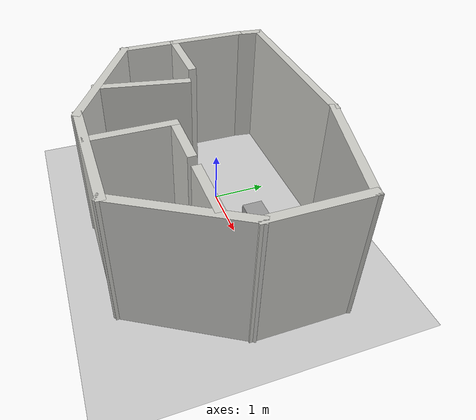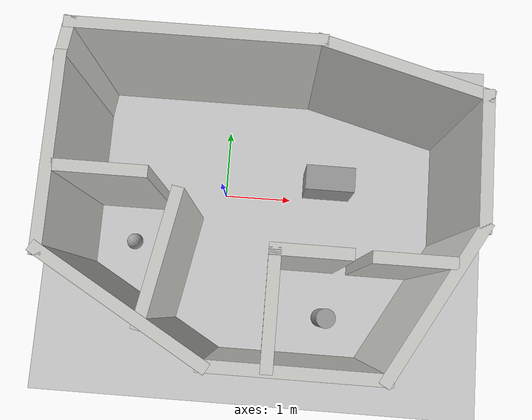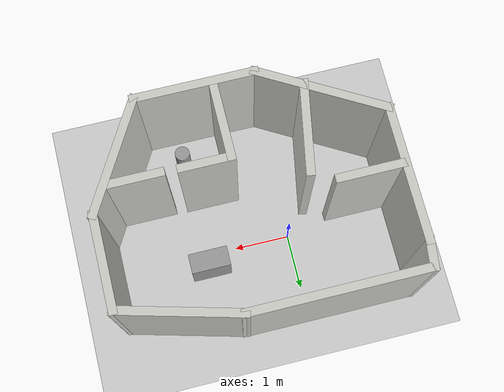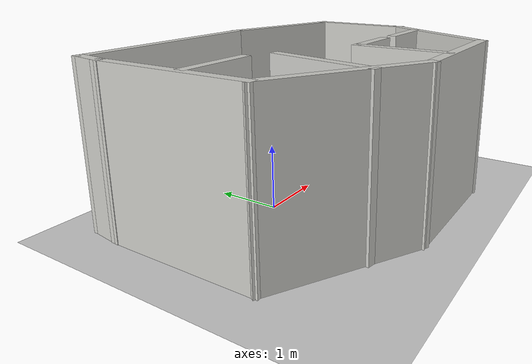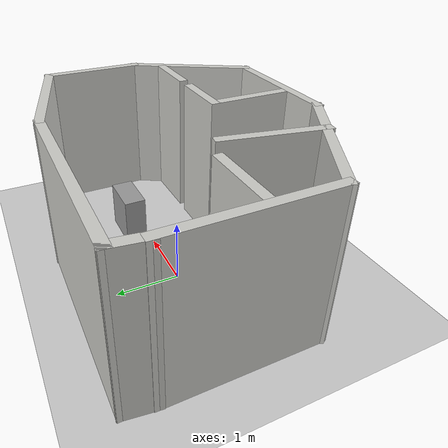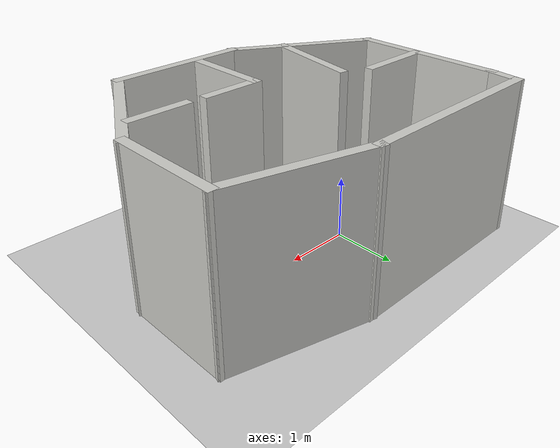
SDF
<sdf version="1.6">
 <world name="default">
  <light name="sun" type="directional">
   <pose>0 0 10 0 -0 0</pose>
   <diffuse>0.8 0.8 0.8 1</diffuse>
   <specular>0.2 0.2 0.2 1</specular>
   <attenuation>
    <range>1000</range>
    <constant>0.9</constant>
    <linear>0.01</linear>
    <quadratic>0.001</quadratic>
   </attenuation>
   <direction>-0.5 0.1 -0.9</direction>
  </light>
  <model name="ground_plane">
   <static>1</static>
   <link name="link">
    <collision name="collision">
     <geometry><plane><normal>0 0 1</normal><size>100 100</size></plane></geometry>
     <surface>
      <contact><collide_bitmask>65535</collide_bitmask></contact>
      <friction><ode><mu>100</mu><mu2>50</mu2></ode></friction>
     </surface>
    </collision>
    <visual name="visual">
     <cast_shadows>0</cast_shadows>
     <geometry><plane><normal>0 0 1</normal><size>100 100</size></plane></geometry>
     <material>
      <script><uri>file://media/materials/scripts/gazebo.material</uri><name>Gazebo/Grey</name></script>
     </material>
    </visual>
   </link>
  </model>
  <gravity>0 0 -9.8</gravity>
  <magnetic_field>6e-06 2.3e-05 -4.2e-05</magnetic_field>
  <atmosphere type="adiabatic"/>
  <physics name="default_physics" default="0" type="ode">
   <max_step_size>0.001</max_step_size>
   <real_time_factor>1</real_time_factor>
   <real_time_update_rate>1000</real_time_update_rate>
  </physics>
  <scene><ambient>0.4 0.4 0.4 1</ambient><background>0.7 0.7 0.7 1</background><shadows>1</shadows></scene>
  <audio><device>default</device></audio>
  <spherical_coordinates>
   <surface_model>EARTH_WGS84</surface_model>
   <latitude_deg>0</latitude_deg>
   <longitude_deg>0</longitude_deg>
   <elevation>0</elevation>
   <heading_deg>0</heading_deg>
  </spherical_coordinates>
  <model name="rig_wall">
   <pose>0.62258 -0.40921 0 0 -0 0</pose>
   <link name="Wall_0">
    <collision name="Wall_0_Collision">
     <geometry><box><size>2.5 0.15 2.5</size></box></geometry>
     <pose>0 0 1.25 0 -0 0</pose>
    </collision>
    <visual name="Wall_0_Visual">
     <pose>0 0 1.25 0 -0 0</pose>
     <geometry><box><size>2.5 0.15 2.5</size></box></geometry>
     <material>
      <script><uri>file://media/materials/scripts/gazebo.material</uri><name>Gazebo/CeilingTiled</name></script>
      <ambient>1 1 1 1</ambient>
     </material>
     <meta><layer>0</layer></meta>
    </visual>
    <pose>-2.59258 0.374211 0 0 -0 -1.5708</pose>
   </link>
   <link name="Wall_1">
    <collision name="Wall_1_Collision">
     <geometry><box><size>2.5 0.15 2.5</size></box></geometry>
     <pose>0 0 1.25 0 -0 0</pose>
    </collision>
    <visual name="Wall_1_Visual">
     <pose>0 0 1.25 0 -0 0</pose>
     <geometry><box><size>2.5 0.15 2.5</size></box></geometry>
     <material>
      <script><uri>file://media/materials/scripts/gazebo.material</uri><name>Gazebo/CeilingTiled</name></script>
      <ambient>1 1 1 1</ambient>
     </material>
     <meta><layer>0</layer></meta>
    </visual>
    <pose>-1.575 -1.38829 0 0 -0 -0.523599</pose>
   </link>
   <link name="Wall_10">
    <collision name="Wall_10_Collision">
     <geometry><box><size>1.71545 0.15 2.5</size></box></geometry>
     <pose>0 0 1.25 0 -0 0</pose>
    </collision>
    <visual name="Wall_10_Visual">
     <pose>0 0 1.25 0 -0 0</pose>
     <geometry><box><size>1.71545 0.15 2.5</size></box></geometry>
     <material>
      <script><uri>file://media/materials/scripts/gazebo.material</uri><name>Gazebo/CeilingTiled</name></script>
      <ambient>1 1 1 1</ambient>
     </material>
     <meta><layer>0</layer></meta>
    </visual>
    <pose>-1.17117 -0.794253 0 0 -0 -1.75591</pose>
   </link>
   <link name="Wall_12">
    <collision name="Wall_12_Collision">
     <geometry><box><size>1.25 0.15 2.5</size></box></geometry>
     <pose>0 0 1.25 0 -0 0</pose>
    </collision>
    <visual name="Wall_12_Visual">
     <pose>0 0 1.25 0 -0 0</pose>
     <geometry><box><size>1.25 0.15 2.5</size></box></geometry>
     <material>
      <script><uri>file://media/materials/scripts/gazebo.material</uri><name>Gazebo/CeilingTiled</name></script>
      <ambient>1 1 1 1</ambient>
     </material>
     <meta><layer>0</layer></meta>
    </visual>
    <pose>-2.01258 0.199211 0 0 -0 0</pose>
   </link>
   <link name="Wall_14">
    <collision name="Wall_14_Collision">
     <geometry><box><size>1.5 0.15 2.5</size></box></geometry>
     <pose>0 0 1.25 0 -0 0</pose>
    </collision>
    <visual name="Wall_14_Visual">
     <pose>0 0 1.25 0 -0 0</pose>
     <geometry><box><size>1.5 0.15 2.5</size></box></geometry>
     <material>
      <script><uri>file://media/materials/scripts/gazebo.material</uri><name>Gazebo/CeilingTiled</name></script>
      <ambient>1 1 1 1</ambient>
     </material>
     <meta><layer>0</layer></meta>
    </visual>
    <pose>0.17742 -1.26579 0 0 -0 1.5708</pose>
   </link>
   <link name="Wall_15">
    <collision name="Wall_15_Collision">
     <geometry><box><size>1 0.15 2.5</size></box></geometry>
     <pose>0 0 1.25 0 -0 0</pose>
    </collision>
    <visual name="Wall_15_Visual">
     <pose>0 0 1.25 0 -0 0</pose>
     <geometry><box><size>1 0.15 2.5</size></box></geometry>
     <material>
      <script><uri>file://media/materials/scripts/gazebo.material</uri><name>Gazebo/CeilingTiled</name></script>
      <ambient>1 1 1 1</ambient>
     </material>
     <meta><layer>0</layer></meta>
    </visual>
    <pose>0.60242 -0.590789 0 0 -0 0</pose>
   </link>
   <link name="Wall_17">
    <collision name="Wall_17_Collision">
     <geometry><box><size>1 0.15 2.5</size></box></geometry>
     <pose>0 0 1.25 0 -0 0</pose>
    </collision>
    <visual name="Wall_17_Visual">
     <pose>0 0 1.25 0 -0 0</pose>
     <geometry><box><size>1 0.15 2.5</size></box></geometry>
     <material>
      <script><uri>file://media/materials/scripts/gazebo.material</uri><name>Gazebo/CeilingTiled</name></script>
      <ambient>1 1 1 1</ambient>
     </material>
     <meta><layer>0</layer></meta>
    </visual>
    <pose>1.80242 -0.600789 0 0 -0 0</pose>
   </link>
   <link name="Wall_2">
    <collision name="Wall_2_Collision">
     <geometry><box><size>2.25 0.15 2.5</size></box></geometry>
     <pose>0 0 1.25 0 -0 0</pose>
    </collision>
    <visual name="Wall_2_Visual">
     <pose>0 0 1.25 0 -0 0</pose>
     <geometry><box><size>2.25 0.15 2.5</size></box></geometry>
     <material>
      <script><uri>file://media/materials/scripts/gazebo.material</uri><name>Gazebo/CeilingTiled</name></script>
      <ambient>1 1 1 1</ambient>
     </material>
     <meta><layer>0</layer></meta>
    </visual>
    <pose>0.49258 -1.97579 0 0 -0 0</pose>
   </link>
   <link name="Wall_3">
    <collision name="Wall_3_Collision">
     <geometry><box><size>2.25 0.15 2.5</size></box></geometry>
     <pose>0 0 1.25 0 -0 0</pose>
    </collision>
    <visual name="Wall_3_Visual">
     <pose>0 0 1.25 0 -0 0</pose>
     <geometry><box><size>2.25 0.15 2.5</size></box></geometry>
     <material>
      <script><uri>file://media/materials/scripts/gazebo.material</uri><name>Gazebo/CeilingTiled</name></script>
      <ambient>1 1 1 1</ambient>
     </material>
     <meta><layer>0</layer></meta>
    </visual>
    <pose>2.06758 -1.06646 0 0 -0 1.0472</pose>
   </link>
   <link name="Wall_4">
    <collision name="Wall_4_Collision">
     <geometry><box><size>1.75 0.15 2.5</size></box></geometry>
     <pose>0 0 1.25 0 -0 0</pose>
    </collision>
    <visual name="Wall_4_Visual">
     <pose>0 0 1.25 0 -0 0</pose>
     <geometry><box><size>1.75 0.15 2.5</size></box></geometry>
     <material>
      <script><uri>file://media/materials/scripts/gazebo.material</uri><name>Gazebo/CeilingTiled</name></script>
      <ambient>1 1 1 1</ambient>
     </material>
     <meta><layer>0</layer></meta>
    </visual>
    <pose>2.59258 0.642865 0 0 -0 1.5708</pose>
   </link>
   <link name="Wall_5">
    <collision name="Wall_5_Collision">
     <geometry><box><size>2.25 0.15 2.5</size></box></geometry>
     <pose>0 0 1.25 0 -0 0</pose>
    </collision>
    <visual name="Wall_5_Visual">
     <pose>0 0 1.25 0 -0 0</pose>
     <geometry><box><size>2.25 0.15 2.5</size></box></geometry>
     <material>
      <script><uri>file://media/materials/scripts/gazebo.material</uri><name>Gazebo/CeilingTiled</name></script>
      <ambient>1 1 1 1</ambient>
     </material>
     <meta><layer>0</layer></meta>
    </visual>
    <pose>1.57836 1.71463 0 0 -0 2.87979</pose>
   </link>
   <link name="Wall_6">
    <collision name="Wall_6_Collision">
     <geometry><box><size>3.25 0.15 2.5</size></box></geometry>
     <pose>0 0 1.25 0 -0 0</pose>
    </collision>
    <visual name="Wall_6_Visual">
     <pose>0 0 1.25 0 -0 0</pose>
     <geometry><box><size>3.25 0.15 2.5</size></box></geometry>
     <material>
      <script><uri>file://media/materials/scripts/gazebo.material</uri><name>Gazebo/CeilingTiled</name></script>
      <ambient>1 1 1 1</ambient>
     </material>
     <meta><layer>0</layer></meta>
    </visual>
    <pose>-0.985864 1.98639 0 0 -0 3.14159</pose>
   </link>
   <link name="Wall_7">
    <collision name="Wall_7_Collision">
     <geometry><box><size>0.590837 0.15 2.5</size></box></geometry>
     <pose>0 0 1.25 0 -0 0</pose>
    </collision>
    <visual name="Wall_7_Visual">
     <pose>0 0 1.25 0 -0 0</pose>
     <geometry><box><size>0.590837 0.15 2.5</size></box></geometry>
     <material>
      <script><uri>file://media/materials/scripts/gazebo.material</uri><name>Gazebo/CeilingTiled</name></script>
      <ambient>1 1 1 1</ambient>
     </material>
     <meta><layer>0</layer></meta>
    </visual>
    <pose>-2.56422 1.7678 0 0 -0 -1.69981</pose>
   </link>
   <static>1</static>
  </model>
  <model name="unit_box">
   <pose>1.53876 0.242351 0.389765 0 -0 0</pose>
   <link name="link">
    <inertial>
     <mass>1</mass>
     <inertia>
      <ixx>0.166667</ixx>
      <ixy>0</ixy>
      <ixz>0</ixz>
      <iyy>0.166667</iyy>
      <iyz>0</iyz>
      <izz>0.166667</izz>
     </inertia>
    </inertial>
    <collision name="collision"><geometry><box><size>0.713674 0.359499 0.77953</size></box></geometry></collision>
    <visual name="visual">
     <geometry><box><size>0.713674 0.359499 0.77953</size></box></geometry>
     <material>
      <script><name>Gazebo/Grey</name><uri>file://media/materials/scripts/gazebo.material</uri></script>
     </material>
    </visual>
   </link>
  </model>
  <model name="unit_cylinder">
   <pose>1.57305 -1.75805 0.499999 0 -0 2.2e-05</pose>
   <link name="link">
    <inertial>
     <mass>1</mass>
     <inertia><ixx>0.145833</ixx><ixy>0</ixy><ixz>0</ixz><iyy>0.145833</iyy><iyz>0</iyz><izz>0.125</izz></inertia>
    </inertial>
    <collision name="collision">
     <geometry><cylinder><radius>0.135252</radius><length>1</length></cylinder></geometry>
    </collision>
    <visual name="visual">
     <geometry><cylinder><radius>0.135252</radius><length>1</length></cylinder></geometry>
     <material>
      <script><name>Gazebo/Grey</name><uri>file://media/materials/scripts/gazebo.material</uri></script>
     </material>
    </visual>
   </link>
  </model>
  <model name="unit_sphere">
   <pose>-1.31429 -0.824075 0.120904 0 -0 0</pose>
   <link name="link">
    <inertial>
     <mass>1</mass>
     <inertia><ixx>0.1</ixx><ixy>0</ixy><ixz>0</ixz><iyy>0.1</iyy><iyz>0</iyz><izz>0.1</izz></inertia>
    </inertial>
    <collision name="collision"><geometry><sphere><radius>0.120904</radius></sphere></geometry></collision>
    <visual name="visual">
     <geometry><sphere><radius>0.120904</radius></sphere></geometry>
     <material>
      <script><name>Gazebo/Grey</name><uri>file://media/materials/scripts/gazebo.material</uri></script>
     </material>
    </visual>
   </link>
  </model>
 </world>
</sdf>
